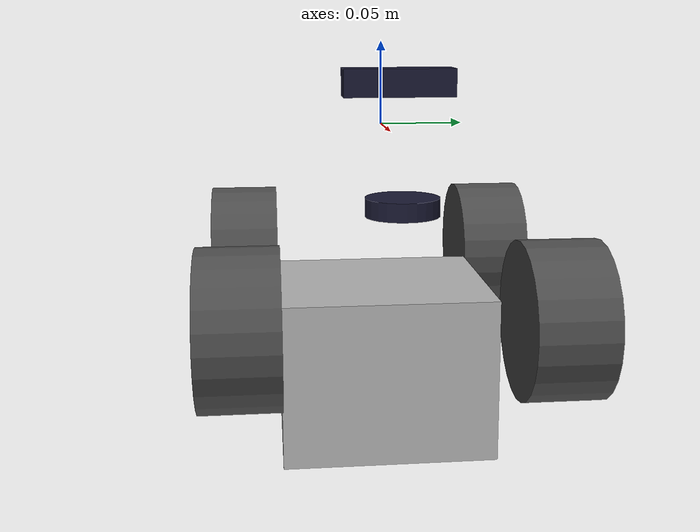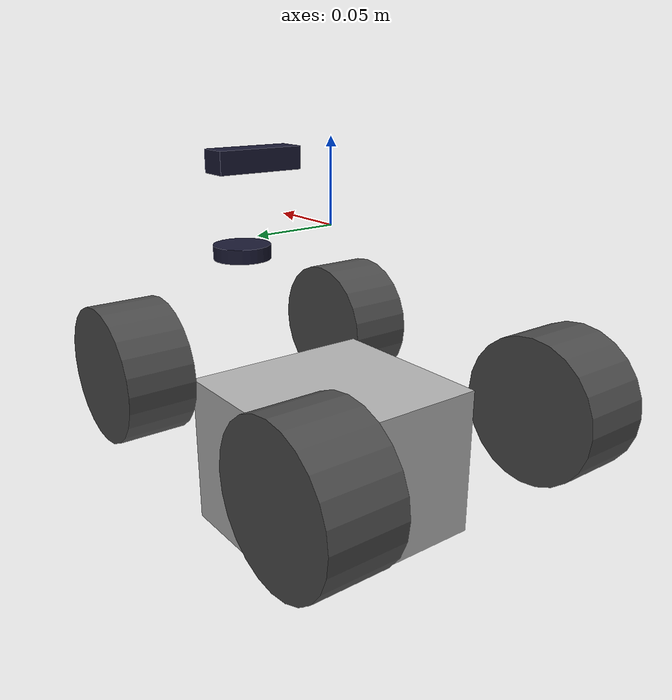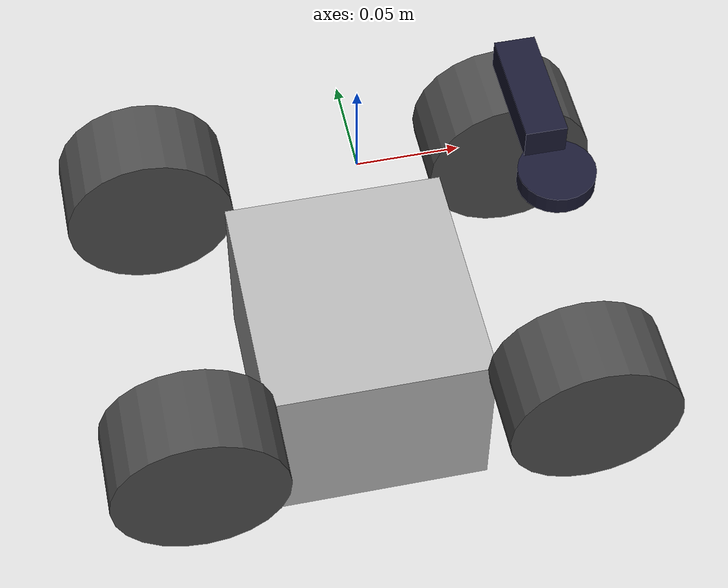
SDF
<?xml version="1.0"?>

<sdf version="1.8">
  <model name="limo">
    <static>false</static>

<!-- Base Footprint Link and Joint (Standard ROS Practice) -->
<link name="base_footprint"/>
<joint name="base_footprint_joint" type="fixed">
  <parent>base_link</parent>
  <child>base_footprint</child>
  <pose>0.0 0.0 -0.15 0 0 0</pose>
</joint>

<!-- Base Link -->
<link name="base_link">
  <!-- Inertial merged from inertial_link -->
  <inertial>
    <pose>0 0 0 0 0 0</pose> <!-- Origin relative to link frame -->
    <mass>2.1557</mass>
    <inertia>
      <ixx>0.24</ixx> <ixy>0</ixy> <ixz>0</ixz>
      <iyy>0.96</iyy> <iyz>0</iyz>
      <izz>0.96</izz>
    </inertia>
  </inertial>
  <!-- Visual from base_link -->
  <visual name="base_visual">
    <!-- ***** REPLACED MESH WITH BOX ***** -->
    <!-- Original pose kept -->
    <pose>0 0 -0.15 0 0 1.57</pose>
    <geometry>
        <!-- Using collision box dimensions as a simple visual representation -->
        <box>
            <size>0.13 0.12 0.1</size>
        </box>
    </geometry>
    <material>
        <ambient>0.5 0.5 0.5 1</ambient>
        <diffuse>0.7 0.7 0.7 1</diffuse>
        <specular>0.1 0.1 0.1 1</specular>
    </material>
  </visual>
  <!-- Collision from base_link -->
  <collision name="base_collision">
    <pose>0 0 0 0 0 0</pose>
    <geometry>
      <box>
        <size>0.13 0.12 0.1</size> <!-- From base_x/y/z_size -->
      </box>
    </geometry>
  </collision>
</link>

<!-- Laser Sensor -->
<link name="laser_link">
  <pose relative_to="base_link">0.103 0 -0.034 0 0 0</pose>
  <inertial>
    <mass>0.1</mass> <pose>0 0 0 0 0 0</pose>
    <inertia> <ixx>1e-6</ixx> <iyy>1e-6</iyy> <izz>1e-6</izz> </inertia>
  </inertial>
  <visual name='laser_visual'>
    <pose>0 0 0 0 0 0</pose>
    <geometry> <cylinder> <radius>0.02</radius> <length>0.01</length> </cylinder> </geometry>
    <material> <ambient>0.1 0.1 0.1 1</ambient> <diffuse>0.1 0.1 0.2 1</diffuse> </material>
  </visual>
  <collision name='laser_collision'>
    <pose>0 0 0 0 0 0</pose>
    <geometry> <cylinder> <radius>0.032</radius> <length>0.016</length> </cylinder> </geometry>
  </collision>
  <sensor name="laser" type="gpu_lidar">
    <pose>0 0 0 0 0 0</pose> <always_on>true</always_on> <visualize>true</visualize> <update_rate>10</update_rate>
    <topic>/limo/scan</topic> <gz_frame_id>laser_link</gz_frame_id>
    <lidar>
      <scan> <horizontal> <samples>120</samples> <resolution>1.0</resolution> <min_angle>-3.14159</min_angle> <max_angle>3.14159</max_angle> </horizontal> </scan>
      <range> <min>0.3</min> <max>15.0</max> <resolution>0.015</resolution> </range>
      <noise> <type>gaussian</type> <mean>0.0</mean> <stddev>0.01</stddev> </noise>
    </lidar>
  </sensor>
</link>
<joint type="fixed" name="laser_joint">
  <parent>base_link</parent> <child>laser_link</child>
</joint>

<!-- Depth Camera Sensor -->
<link name="depth_camera_link">
  <pose relative_to="base_link">0.084 0 0.03 0 0 0</pose>
  <inertial>
    <mass>0.1</mass> <pose>0 0 0 0 0 0</pose>
    <inertia> <ixx>1e-6</ixx> <iyy>1e-6</iyy> <izz>1e-6</izz> </inertia>
  </inertial>
  <visual name='depth_camera_visual'>
    <pose>0 0 0 0 0 0</pose>
    <geometry> <box> <size>0.02 0.06 0.015</size> </box> </geometry>
    <material> <ambient>0.1 0.1 0.1 1</ambient> <diffuse>0.1 0.1 0.2 1</diffuse> </material>
  </visual>
  <collision name='depth_camera_collision'>
    <pose>0 0 0 0 0 0</pose>
    <geometry> <box> <size>0.02 0.06 0.015</size> </box> </geometry>
  </collision>
   <sensor name="sensor_camera" type="depth">
     <pose>0 0 0 0 0 0</pose> <always_on>true</always_on> <update_rate>10.0</update_rate> <visualize>true</visualize>
     <topic>/limo/depth/image_raw</topic> <gz_frame_id>depth_link</gz_frame_id>
     <camera name="limo_camera">
       <horizontal_fov>1.3962634</horizontal_fov>
       <image> <width>640</width> <height>480</height> <format>R8G8B8</format> </image>
       <clip> <near>0.001</near> <far>300</far> </clip>
       <camera_info_topic>/limo/depth/camera_info</camera_info_topic>
     </camera>
   </sensor>
    <sensor name="color_camera" type="camera">
      <pose>0 0 0 0 0 0</pose> <always_on>true</always_on> <update_rate>10.0</update_rate> <visualize>false</visualize>
      <topic>/limo/color/image_raw</topic> <gz_frame_id>depth_link</gz_frame_id>
      <camera name="limo_color_camera">
         <horizontal_fov>1.3962634</horizontal_fov>
         <image> <width>640</width> <height>480</height> <format>R8G8B8</format> </image>
         <clip> <near>0.02</near> <far>300</far> </clip>
         <camera_info_topic>/limo/color/camera_info</camera_info_topic>
      </camera>
    </sensor>
</link>
<joint type="fixed" name="depth_camera_joint">
  <parent>base_link</parent> <child>depth_camera_link</child>
</joint>
<!-- Optical Frame Link and Joint -->
<link name="depth_link">
     <pose relative_to="depth_camera_link">0 0 0 -1.570796 0 -1.570796</pose>
     <inertial> <mass>1e-5</mass> <inertia> <ixx>1e-6</ixx> <iyy>1e-6</iyy> <izz>1e-6</izz> </inertia> </inertial>
</link>
<joint name="depth_camera_to_camera_joint" type="fixed">
  <parent>depth_camera_link</parent> <child>depth_link</child>
</joint>

<!-- IMU Sensor -->
<link name="imu_link">
  <pose relative_to="base_link">0.0 0 -0.1 0 0 0</pose>
  <inertial>
    <mass>0.01</mass> <pose>0 0 0 0 0 0</pose>
    <inertia> <ixx>1e-7</ixx> <iyy>1e-7</iyy> <izz>1e-7</izz> </inertia>
  </inertial>
  <sensor name="twr_imu" type="imu">
    <pose>0 0 0 0 0 0</pose> <always_on>true</always_on> <update_rate>100</update_rate> <visualize>true</visualize>
    <topic>/limo/imu</topic> <gz_frame_id>imu_link</gz_frame_id>
    <imu>
      <orientation_reference_frame>ENU</orientation_reference_frame>
      <angular_velocity>
        <x><noise type="gaussian"><mean>0.0</mean><stddev>2e-4</stddev></noise></x>
        <y><noise type="gaussian"><mean>0.0</mean><stddev>2e-4</stddev></noise></y>
        <z><noise type="gaussian"><mean>0.0</mean><stddev>2e-4</stddev></noise></z>
      </angular_velocity>
      <linear_acceleration>
        <x><noise type="gaussian"><mean>0.0</mean><stddev>1.7e-2</stddev></noise></x>
        <y><noise type="gaussian"><mean>0.0</mean><stddev>1.7e-2</stddev></noise></y>
        <z><noise type="gaussian"><mean>0.0</mean><stddev>1.7e-2</stddev></noise></z>
      </linear_acceleration>
    </imu>
  </sensor>
</link>
<joint type="fixed" name="imu_joint">
  <parent>base_link</parent> <child>imu_link</child>
</joint>

<!-- Front Left Wheel -->
<link name="front_left_wheel_link">
  <pose relative_to="base_link">0.1 0.065 -0.10 0 0 0</pose>
  <inertial>
    <mass>0.5</mass> <pose>0 0 0 0 0 0</pose>
    <inertia> <ixx>0.01055</ixx> <iyy>0.00075</iyy> <izz>0.01055</izz> </inertia>
  </inertial>
  <visual name="front_left_wheel_visual">
    <!-- ***** REPLACED MESH WITH CYLINDER ***** -->
    <!-- Using collision pose for visual alignment -->
    <pose>0 0.0225 0 1.57 0 0</pose>
    <geometry>
        <!-- Using collision cylinder dimensions -->
        <cylinder><length>0.045</length><radius>0.045</radius></cylinder>
    </geometry>
    <material>
        <ambient>0.2 0.2 0.2 1</ambient>
        <diffuse>0.3 0.3 0.3 1</diffuse>
        <specular>0.01 0.01 0.01 1</specular>
    </material>
  </visual>
  <collision name="front_left_wheel_link_collision">
    <pose>0 0.0225 0 1.57 0 0</pose>
    <geometry> <cylinder><length>0.045</length><radius>0.045</radius></cylinder> </geometry>
    <surface>
      <friction> <ode> <mu>100</mu> <mu2>100</mu2> <fdir1>1 0 0</fdir1> </ode> </friction>
      <bounce> <restitution_coefficient>0</restitution_coefficient> <threshold>1e6</threshold> </bounce>
      <contact> <ode> <kp>10000000.0</kp> <kd>1.0</kd> <min_depth>0.01</min_depth> </ode> </contact>
    </surface>
    <max_contacts>64</max_contacts>
  </collision>
  <sensor name="front_left_bumper" type="contact">
     <always_on>true</always_on> <update_rate>50</update_rate> <visualize>true</visualize>
     <topic>/limo/front_left_wheel_contact</topic> <gz_frame_id>front_left_wheel_link</gz_frame_id>
     <contact> <collision>front_left_wheel_link_collision</collision> </contact>
  </sensor>
</link>
<joint name="front_left_wheel" type="revolute">
  <parent>base_link</parent> <child>front_left_wheel_link</child>
  <axis> <xyz>0 1 0</xyz> <limit> <effort>20</effort> </limit> </axis>
</joint>

<!-- Front Right Wheel -->
<link name="front_right_wheel_link">
  <pose relative_to="base_link">0.1 -0.065 -0.10 3.14159 0 0</pose>
  <inertial>
    <mass>0.5</mass> <pose>0 0 0 0 0 0</pose>
    <inertia> <ixx>0.01055</ixx> <iyy>0.00075</iyy> <izz>0.01055</izz> </inertia>
  </inertial>
  <visual name="front_right_wheel_visual">
    <!-- ***** REPLACED MESH WITH CYLINDER ***** -->
    <!-- Using collision pose for visual alignment -->
    <pose>0 0.0225 0 1.57 0 0</pose>
    <geometry>
        <!-- Using collision cylinder dimensions -->
        <cylinder><length>0.045</length><radius>0.045</radius></cylinder>
    </geometry>
    <material>
        <ambient>0.2 0.2 0.2 1</ambient>
        <diffuse>0.3 0.3 0.3 1</diffuse>
        <specular>0.01 0.01 0.01 1</specular>
    </material>
  </visual>
  <collision name="front_right_wheel_link_collision">
     <pose>0 0.0225 0 1.57 0 0</pose>
    <geometry> <cylinder><length>0.045</length><radius>0.045</radius></cylinder> </geometry>
    <surface>
      <friction> <ode> <mu>100</mu> <mu2>100</mu2> <fdir1>1 0 0</fdir1> </ode> </friction>
      <bounce> <restitution_coefficient>0</restitution_coefficient> <threshold>1e6</threshold> </bounce>
      <contact> <ode> <kp>10000000.0</kp> <kd>1.0</kd> <min_depth>0.01</min_depth> </ode> </contact>
    </surface>
     <max_contacts>64</max_contacts>
  </collision>
   <sensor name="front_right_bumper" type="contact">
     <always_on>true</always_on> <update_rate>50</update_rate> <visualize>true</visualize>
     <topic>/limo/front_right_wheel_contact</topic> <gz_frame_id>front_right_wheel_link</gz_frame_id>
     <contact> <collision>front_right_wheel_link_collision</collision> </contact>
   </sensor>
</link>
<joint name="front_right_wheel" type="revolute">
  <parent>base_link</parent> <child>front_right_wheel_link</child>
  <axis> <xyz>0 -1 0</xyz> <limit> <effort>20</effort> </limit> </axis>
</joint>

<!-- Rear Left Wheel -->
<link name="rear_left_wheel_link">
  <pose relative_to="base_link">-0.1 0.065 -0.10 0 0 0</pose>
   <inertial>
    <mass>0.5</mass> <pose>0 0 0 0 0 0</pose>
    <inertia> <ixx>0.01055</ixx> <iyy>0.00075</iyy> <izz>0.01055</izz> </inertia>
  </inertial>
  <visual name="rear_left_wheel_visual">
     <!-- ***** REPLACED MESH WITH CYLINDER ***** -->
     <!-- Using collision pose for visual alignment -->
    <pose>0 0.0225 0 1.57 0 0</pose>
    <geometry>
        <!-- Using collision cylinder dimensions -->
        <cylinder><length>0.045</length><radius>0.045</radius></cylinder>
    </geometry>
    <material>
        <ambient>0.2 0.2 0.2 1</ambient>
        <diffuse>0.3 0.3 0.3 1</diffuse>
        <specular>0.01 0.01 0.01 1</specular>
    </material>
  </visual>
  <collision name="rear_left_wheel_link_collision">
    <pose>0 0.0225 0 1.57 0 0</pose>
    <geometry> <cylinder><length>0.045</length><radius>0.045</radius></cylinder> </geometry>
    <surface>
      <friction> <ode> <mu>100</mu> <mu2>100</mu2> <fdir1>1 0 0</fdir1> </ode> </friction>
      <bounce> <restitution_coefficient>0</restitution_coefficient> <threshold>1e6</threshold> </bounce>
      <contact> <ode> <kp>10000000.0</kp> <kd>1.0</kd> <min_depth>0.01</min_depth> </ode> </contact>
    </surface>
     <max_contacts>64</max_contacts>
  </collision>
   <sensor name="rear_left_bumper" type="contact">
     <always_on>true</always_on> <update_rate>50</update_rate> <visualize>true</visualize>
     <topic>/limo/rear_left_wheel_contact</topic> <gz_frame_id>rear_left_wheel_link</gz_frame_id>
     <contact> <collision>rear_left_wheel_link_collision</collision> </contact>
   </sensor>
</link>
<joint name="rear_left_wheel" type="revolute">
  <parent>base_link</parent> <child>rear_left_wheel_link</child>
  <axis> <xyz>0 1 0</xyz> <limit> <effort>20</effort> </limit> </axis>
</joint>

<!-- Rear Right Wheel -->
<link name="rear_right_wheel_link">
   <pose relative_to="base_link">-0.1 -0.065 -0.10 3.14159 0 0</pose>
   <inertial>
    <mass>0.5</mass> <pose>0 0 0 0 0 0</pose>
    <inertia> <ixx>0.01055</ixx> <iyy>0.00075</iyy> <izz>0.01055</izz> </inertia>
  </inertial>
  <visual name="rear_right_wheel_visual">
    <!-- ***** REPLACED MESH WITH CYLINDER ***** -->
    <!-- Using collision pose for visual alignment -->
    <pose>0 0.0225 0 1.57 0 0</pose>
    <geometry>
        <!-- Using collision cylinder dimensions -->
        <cylinder><length>0.045</length><radius>0.045</radius></cylinder>
    </geometry>
    <material>
        <ambient>0.2 0.2 0.2 1</ambient>
        <diffuse>0.3 0.3 0.3 1</diffuse>
        <specular>0.01 0.01 0.01 1</specular>
    </material>
  </visual>
  <collision name="rear_right_wheel_link_collision">
    <pose>0 0.0225 0 1.57 0 0</pose>
    <geometry> <cylinder><length>0.045</length><radius>0.045</radius></cylinder> </geometry>
    <surface>
      <friction> <ode> <mu>100</mu> <mu2>100</mu2> <fdir1>1 0 0</fdir1> </ode> </friction>
      <bounce> <restitution_coefficient>0</restitution_coefficient> <threshold>1e6</threshold> </bounce>
      <contact> <ode> <kp>10000000.0</kp> <kd>1.0</kd> <min_depth>0.01</min_depth> </ode> </contact>
    </surface>
     <max_contacts>64</max_contacts>
  </collision>
   <sensor name="rear_right_bumper" type="contact">
     <always_on>true</always_on> <update_rate>50</update_rate> <visualize>true</visualize>
     <topic>/limo/rear_right_wheel_contact</topic> <gz_frame_id>rear_right_wheel_link</gz_frame_id>
     <contact> <collision>rear_right_wheel_link_collision</collision> </contact>
   </sensor>
</link>
<joint name="rear_right_wheel" type="revolute">
  <parent>base_link</parent> <child>rear_right_wheel_link</child>
  <axis> <xyz>0 -1 0</xyz> <limit> <effort>20</effort> </limit> </axis>
</joint>

<!-- Gazebo Fortress Plugins -->
<plugin
  filename="gz-sim-diff-drive-system"
  name="gz::sim::systems::DiffDrive">
  <left_joint>front_left_wheel</left_joint>
  <left_joint>rear_left_wheel</left_joint>
  <right_joint>front_right_wheel</right_joint>
  <right_joint>rear_right_wheel</right_joint>
  <wheel_separation>0.172</wheel_separation>
  <wheel_radius>0.045</wheel_radius>
  <max_linear_acceleration>0.045</max_linear_acceleration>
  <odom_publisher_frequency>50</odom_publisher_frequency>
  <topic>/cmd_vel</topic>
  <odom_topic>odom</odom_topic>
  <tf_topic>/tf</tf_topic>
  <frame_id>odom</frame_id>
  <child_frame_id>base_link</child_frame_id>
</plugin>

 <plugin
   filename="gz-sim-joint-state-publisher-system"
   name="gz::sim::systems::JointStatePublisher">
   <topic>/joint_states</topic>
   <joint_name>front_left_wheel</joint_name>
   <joint_name>front_right_wheel</joint_name>
   <joint_name>rear_left_wheel</joint_name>
   <joint_name>rear_right_wheel</joint_name>
 </plugin>

  </model>
</sdf>
